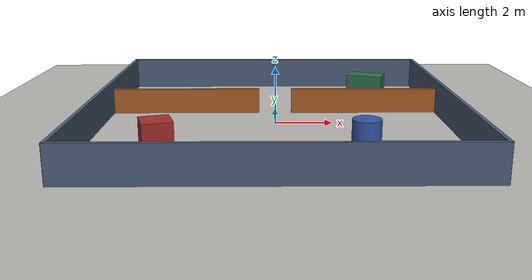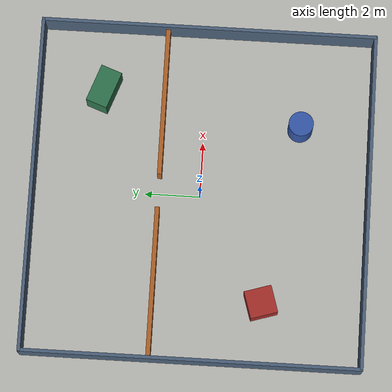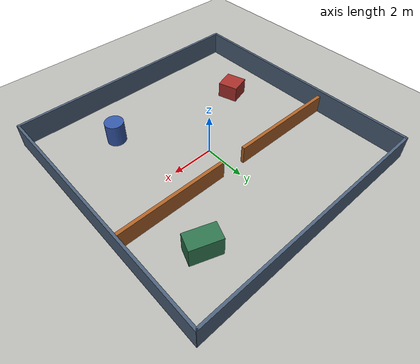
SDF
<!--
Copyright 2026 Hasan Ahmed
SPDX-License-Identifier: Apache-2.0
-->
<?xml version="1.0"?>
<sdf version="1.10">
  <world name="robotest_lab">
    <!--
      A 2 ms step keeps the simple differential-drive/contact dynamics at
      500 Hz while leaving CPU headroom for software-rendered lidar in WSL2.
    -->
    <physics name="cpu_friendly_2ms" type="ode">
      <max_step_size>0.002</max_step_size>
      <real_time_factor>1.0</real_time_factor>
      <real_time_update_rate>500</real_time_update_rate>
    </physics>

    <plugin filename="gz-sim-physics-system" name="gz::sim::systems::Physics"/>
    <plugin filename="gz-sim-user-commands-system" name="gz::sim::systems::UserCommands"/>
    <plugin filename="gz-sim-scene-broadcaster-system" name="gz::sim::systems::SceneBroadcaster"/>
    <plugin
      filename="robotest_contact_aggregator_system"
      name="robotest_sim::ContactAggregatorSystem">
      <output_topic>/robotest/internal/contact_aggregate</output_topic>
      <publish_period_ns>20000000</publish_period_ns>
      <robot_model_name>robotest</robot_model_name>
    </plugin>
    <plugin filename="gz-sim-sensors-system" name="gz::sim::systems::Sensors">
      <render_engine>ogre2</render_engine>
    </plugin>
    <plugin filename="gz-sim-imu-system" name="gz::sim::systems::Imu"/>

    <gravity>0 0 -9.81</gravity>
    <magnetic_field>5.5645e-06 2.28758e-05 -4.23884e-05</magnetic_field>
    <atmosphere type="adiabatic"/>
    <scene>
      <ambient>0.55 0.55 0.55 1</ambient>
      <background>0.75 0.78 0.82 1</background>
      <shadows>false</shadows>
      <grid>false</grid>
    </scene>

    <light name="sun" type="directional">
      <cast_shadows>false</cast_shadows>
      <pose>0 0 10 0 0 0</pose>
      <diffuse>0.8 0.8 0.8 1</diffuse>
      <specular>0.15 0.15 0.15 1</specular>
      <direction>-0.4 0.2 -0.9</direction>
    </light>

    <model name="ground_plane">
      <static>true</static>
      <link name="ground_link">
        <collision name="ground_collision">
          <geometry>
            <plane>
              <normal>0 0 1</normal>
              <size>12 12</size>
            </plane>
          </geometry>
          <surface>
            <friction>
              <ode>
                <mu>1.0</mu>
                <mu2>1.0</mu2>
              </ode>
            </friction>
          </surface>
        </collision>
        <visual name="ground_visual">
          <geometry>
            <plane>
              <normal>0 0 1</normal>
              <size>12 12</size>
            </plane>
          </geometry>
          <material>
            <ambient>0.72 0.72 0.70 1</ambient>
            <diffuse>0.72 0.72 0.70 1</diffuse>
          </material>
        </visual>
      </link>
      <!--
        This permanent 10 Hz source keeps the merged Phase 3 entity-pose
        validation stream alive after a temporary scenario actor is deleted.
      -->
      <plugin filename="gz-sim-pose-publisher-system"
              name="gz::sim::systems::PosePublisher">
        <publish_link_pose>false</publish_link_pose>
        <publish_collision_pose>false</publish_collision_pose>
        <publish_visual_pose>false</publish_visual_pose>
        <publish_sensor_pose>false</publish_sensor_pose>
        <publish_nested_model_pose>false</publish_nested_model_pose>
        <publish_model_pose>true</publish_model_pose>
        <use_pose_vector_msg>true</use_pose_vector_msg>
        <update_frequency>10</update_frequency>
        <static_publisher>false</static_publisher>
      </plugin>
    </model>

    <!-- Four overlapping boundary walls make escape impossible. -->
    <model name="wall_north">
      <static>true</static>
      <pose>0 6.05 0.60 0 0 0</pose>
      <link name="link">
        <collision name="collision">
          <geometry><box><size>12.2 0.12 1.2</size></box></geometry>
        </collision>
        <visual name="visual">
          <geometry><box><size>12.2 0.12 1.2</size></box></geometry>
          <material><ambient>0.30 0.38 0.48 1</ambient><diffuse>0.30 0.38 0.48 1</diffuse></material>
        </visual>
      </link>
    </model>
    <model name="wall_south">
      <static>true</static>
      <pose>0 -6.05 0.60 0 0 0</pose>
      <link name="link">
        <collision name="collision">
          <geometry><box><size>12.2 0.12 1.2</size></box></geometry>
        </collision>
        <visual name="visual">
          <geometry><box><size>12.2 0.12 1.2</size></box></geometry>
          <material><ambient>0.30 0.38 0.48 1</ambient><diffuse>0.30 0.38 0.48 1</diffuse></material>
        </visual>
      </link>
    </model>
    <model name="wall_east">
      <static>true</static>
      <pose>6.05 0 0.60 0 0 0</pose>
      <link name="link">
        <collision name="collision">
          <geometry><box><size>0.12 12.2 1.2</size></box></geometry>
        </collision>
        <visual name="visual">
          <geometry><box><size>0.12 12.2 1.2</size></box></geometry>
          <material><ambient>0.30 0.38 0.48 1</ambient><diffuse>0.30 0.38 0.48 1</diffuse></material>
        </visual>
      </link>
    </model>
    <model name="wall_west">
      <static>true</static>
      <pose>-6.05 0 0.60 0 0 0</pose>
      <link name="link">
        <collision name="collision">
          <geometry><box><size>0.12 12.2 1.2</size></box></geometry>
        </collision>
        <visual name="visual">
          <geometry><box><size>0.12 12.2 1.2</size></box></geometry>
          <material><ambient>0.30 0.38 0.48 1</ambient><diffuse>0.30 0.38 0.48 1</diffuse></material>
        </visual>
      </link>
    </model>

    <!-- A split divider leaves a repeatable 1.2 m navigation passage. -->
    <model name="divider_west">
      <static>true</static>
      <pose>-3.30 1.50 0.45 0 0 0</pose>
      <link name="link">
        <collision name="collision">
          <geometry><box><size>5.4 0.16 0.9</size></box></geometry>
        </collision>
        <visual name="visual">
          <geometry><box><size>5.4 0.16 0.9</size></box></geometry>
          <material><ambient>0.68 0.38 0.15 1</ambient><diffuse>0.68 0.38 0.15 1</diffuse></material>
        </visual>
      </link>
    </model>
    <model name="divider_east">
      <static>true</static>
      <pose>3.30 1.50 0.45 0 0 0</pose>
      <link name="link">
        <collision name="collision">
          <geometry><box><size>5.4 0.16 0.9</size></box></geometry>
        </collision>
        <visual name="visual">
          <geometry><box><size>5.4 0.16 0.9</size></box></geometry>
          <material><ambient>0.68 0.38 0.15 1</ambient><diffuse>0.68 0.38 0.15 1</diffuse></material>
        </visual>
      </link>
    </model>

    <model name="obstacle_box_west">
      <static>true</static>
      <pose>-3.8 -2.4 0.40 0 0 0.30</pose>
      <link name="link">
        <collision name="collision">
          <geometry><box><size>1.0 1.0 0.8</size></box></geometry>
        </collision>
        <visual name="visual">
          <geometry><box><size>1.0 1.0 0.8</size></box></geometry>
          <material><ambient>0.65 0.18 0.16 1</ambient><diffuse>0.65 0.18 0.16 1</diffuse></material>
        </visual>
      </link>
    </model>

    <model name="obstacle_box_east">
      <static>true</static>
      <pose>3.7 3.7 0.50 0 0 -0.35</pose>
      <link name="link">
        <collision name="collision">
          <geometry><box><size>1.4 0.8 1.0</size></box></geometry>
        </collision>
        <visual name="visual">
          <geometry><box><size>1.4 0.8 1.0</size></box></geometry>
          <material><ambient>0.18 0.45 0.30 1</ambient><diffuse>0.18 0.45 0.30 1</diffuse></material>
        </visual>
      </link>
    </model>

    <model name="obstacle_cylinder">
      <static>true</static>
      <pose>2.7 -3.5 0.55 0 0 0</pose>
      <link name="link">
        <collision name="collision">
          <geometry><cylinder><radius>0.45</radius><length>1.1</length></cylinder></geometry>
        </collision>
        <visual name="visual">
          <geometry><cylinder><radius>0.45</radius><length>1.1</length></cylinder></geometry>
          <material><ambient>0.20 0.34 0.66 1</ambient><diffuse>0.20 0.34 0.66 1</diffuse></material>
        </visual>
      </link>
    </model>
  </world>
</sdf>
